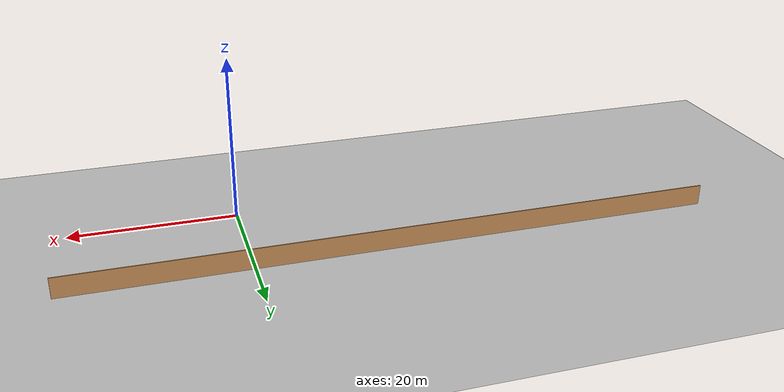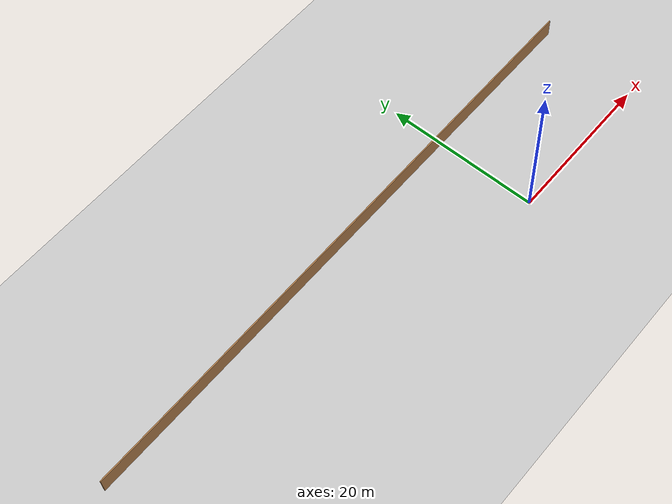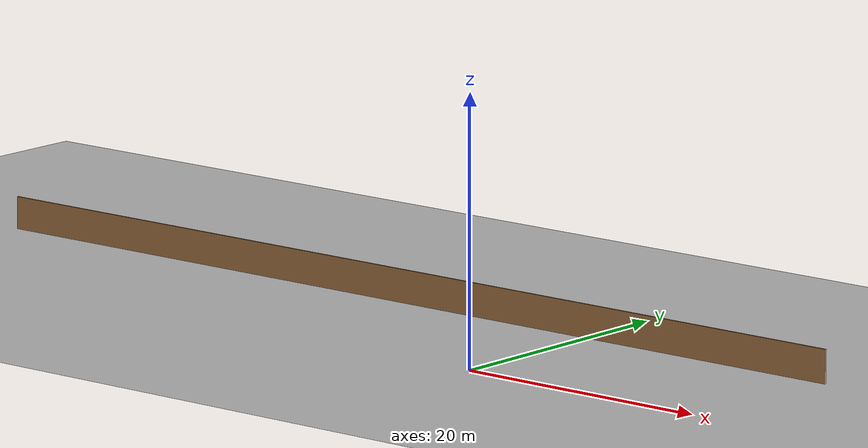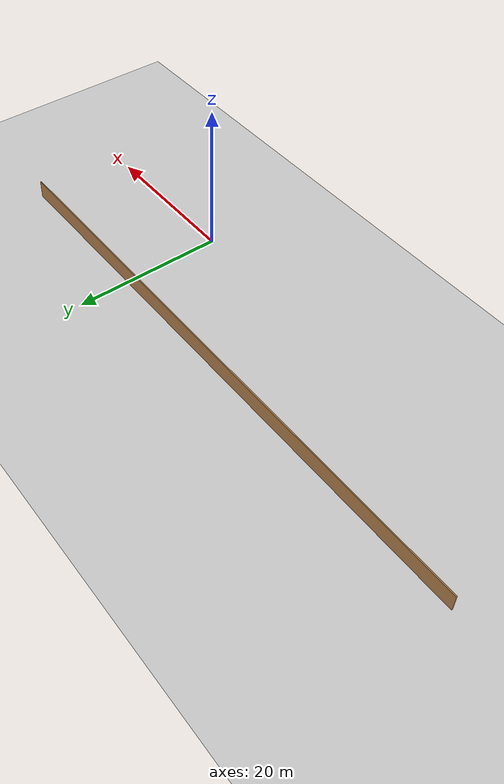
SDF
<sdf version="1.7">
 <world name="default">
  <model name="ground_plane">
   <static>1</static>
   <link name="link">
    <collision name="collision">
     <geometry><plane><normal>0 0 1</normal><size>100 100</size></plane></geometry>
     <surface>
      <contact><collide_bitmask>65535</collide_bitmask></contact>
      <friction><ode><mu>100</mu><mu2>50</mu2></ode></friction>
     </surface>
    </collision>
    <visual name="visual">
     <cast_shadows>0</cast_shadows>
     <geometry><plane><normal>0 0 1</normal><size>100 100</size></plane></geometry>
     <material>
      <script><uri>file://media/materials/scripts/gazebo.material</uri><name>Gazebo/Grey</name></script>
     </material>
    </visual>
   </link>
  </model>
  <model name="wood_wall_0">
   <pose>-17.114 6.7362 0 0 -0 0</pose>
   <link name="Wall_13">
    <collision name="Wall_13_Collision">
     <geometry><box><size>77.25 0.15 2.5</size></box></geometry>
     <pose>0 0 1.25 0 -0 0</pose>
    </collision>
    <visual name="Wall_13_Visual">
     <pose>0 0 1.25 0 -0 0</pose>
     <geometry><box><size>77.25 0.15 2.5</size></box></geometry>
     <material>
      <script><uri>file://media/materials/scripts/gazebo.material</uri><name>Gazebo/Wood</name></script>
      <ambient>1 1 1 1</ambient>
     </material>
     <meta><layer>0</layer></meta>
    </visual>
    <pose>-1e-06 6.34447 0 0 -0 0</pose>
   </link>
   <static>1</static>
  </model>
 </world>
</sdf>
